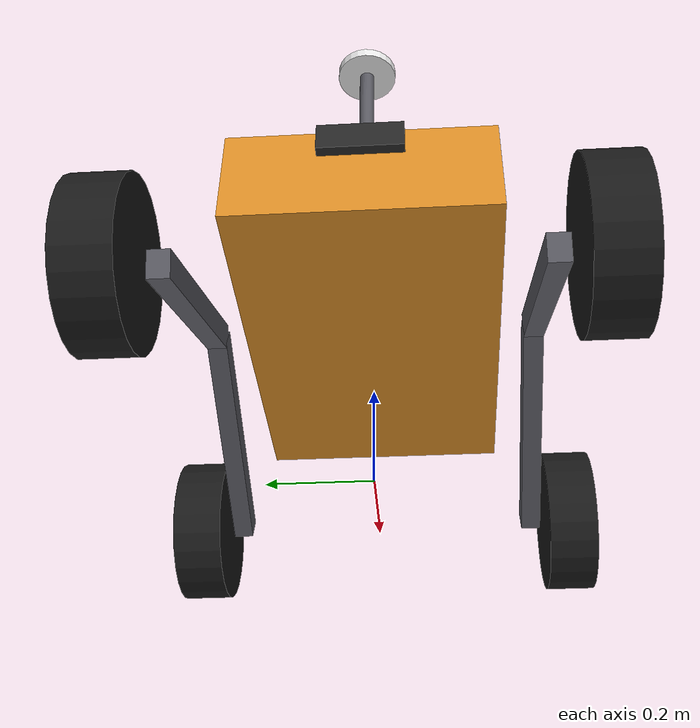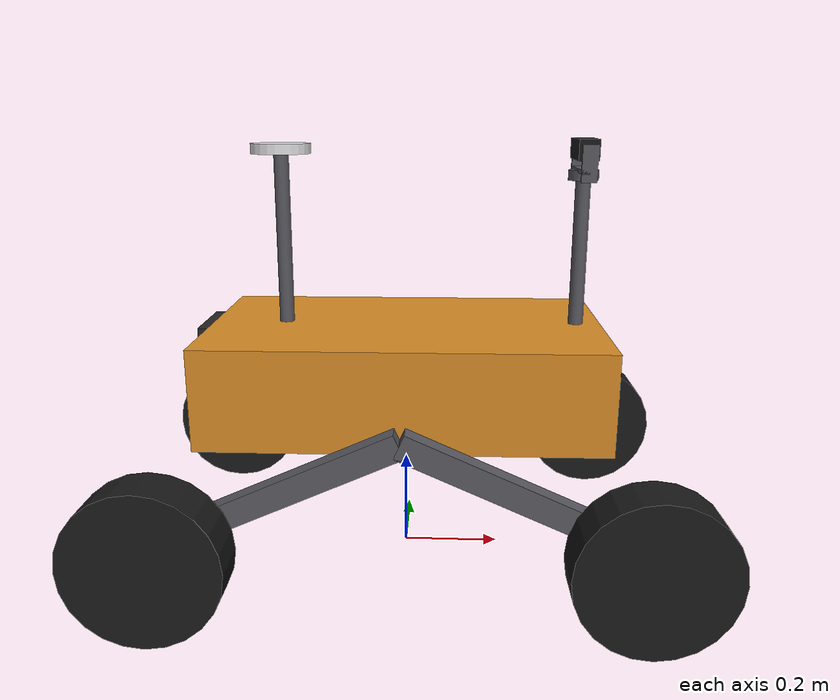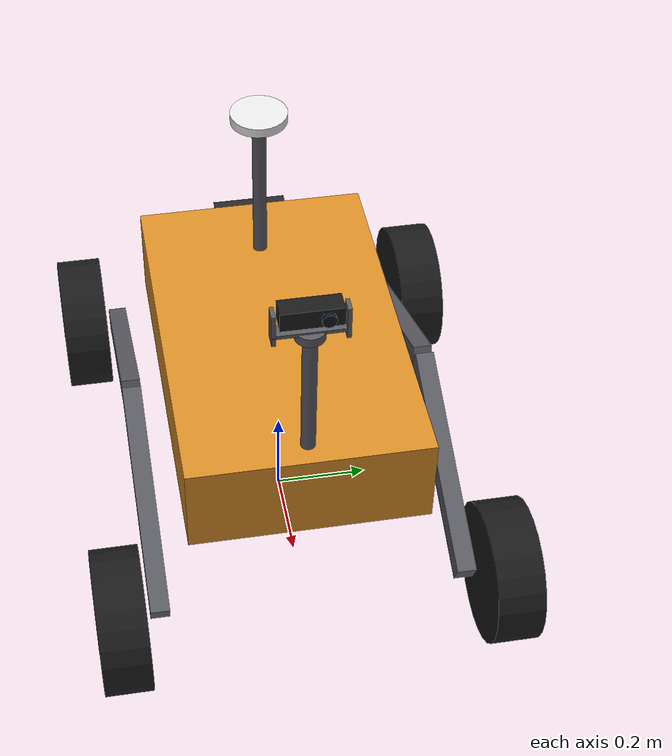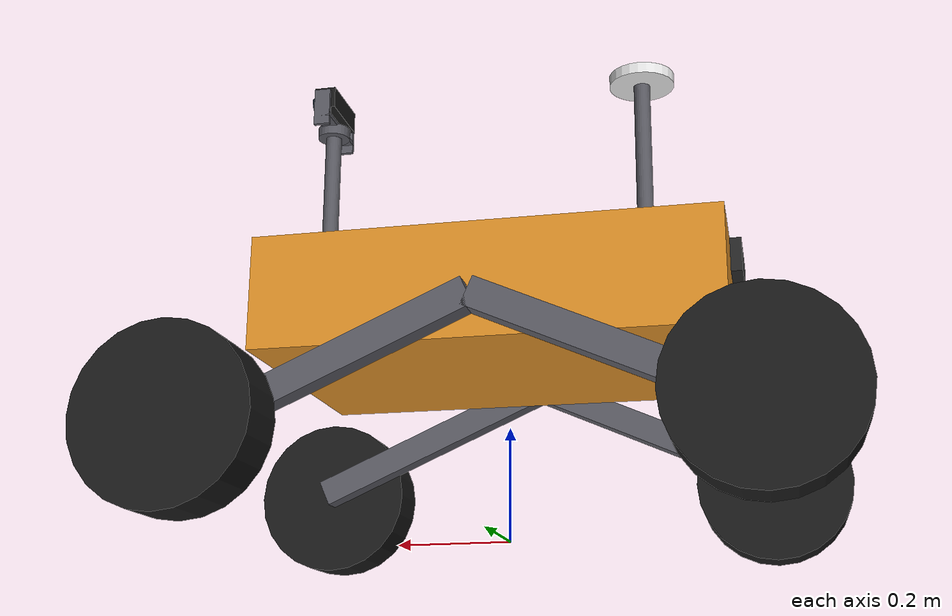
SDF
<?xml version="1.0"?>
<sdf version="1.11">
  <model name="rover">
    <link name="base_link">
      <inertial>
        <pose>0 0 0.4 0 0 0</pose>
        <mass>30</mass>
        <inertia>
          <ixx>0.725</ixx>
          <iyy>1.7</iyy>
          <izz>2.225</izz>
          <ixy>0</ixy>
          <ixz>0</ixz>
          <iyz>0</iyz>
        </inertia>
      </inertial>
      <collision name="chassis_collision">
        <pose>0 0 0.4 0 0 0</pose>
        <geometry>
          <box>
            <size>0.8 0.5 0.2</size>
          </box>
        </geometry>
      </collision>
      <visual name="chassis_visual">
        <pose>0 0 0.4 0 0 0</pose>
        <geometry>
          <box>
            <size>0.8 0.5 0.2</size>
          </box>
        </geometry>
        <material>
          <ambient>0.85 0.55 0.15 1</ambient>
          <diffuse>0.85 0.55 0.15 1</diffuse>
        </material>
      </visual>
      <sensor name="imu" type="imu">
        <pose>0 0 0.4 0 0 0</pose>
        <always_on>true</always_on>
        <update_rate>100</update_rate>
        <topic>/model/rover/imu</topic>
        <gz_frame_id>base_link</gz_frame_id>
        <imu>
          <angular_velocity>
            <x>
              <noise type="gaussian">
                <mean>0</mean>
                <stddev>0.002</stddev>
              </noise>
            </x>
            <y>
              <noise type="gaussian">
                <mean>0</mean>
                <stddev>0.002</stddev>
              </noise>
            </y>
            <z>
              <noise type="gaussian">
                <mean>0</mean>
                <stddev>0.002</stddev>
              </noise>
            </z>
          </angular_velocity>
          <linear_acceleration>
            <x>
              <noise type="gaussian">
                <mean>0</mean>
                <stddev>0.02</stddev>
              </noise>
            </x>
            <y>
              <noise type="gaussian">
                <mean>0</mean>
                <stddev>0.02</stddev>
              </noise>
            </y>
            <z>
              <noise type="gaussian">
                <mean>0</mean>
                <stddev>0.02</stddev>
              </noise>
            </z>
          </linear_acceleration>
        </imu>
      </sensor>
      <visual name="gnss_mast_visual">
        <pose>-0.25 0 0.675 0 0 0</pose>
        <geometry>
          <cylinder>
            <radius>0.015</radius>
            <length>0.35</length>
          </cylinder>
        </geometry>
        <material>
          <ambient>0.35 0.35 0.38 1</ambient>
          <diffuse>0.35 0.35 0.38 1</diffuse>
        </material>
      </visual>
      <visual name="gnss_antenna_visual">
        <pose>-0.25 0 0.85 0 0 0</pose>
        <geometry>
          <cylinder>
            <radius>0.06</radius>
            <length>0.02</length>
          </cylinder>
        </geometry>
        <material>
          <ambient>0.9 0.9 0.9 1</ambient>
          <diffuse>0.9 0.9 0.9 1</diffuse>
        </material>
      </visual>
      <visual name="camera_mast_visual">
        <pose>0.35 0 0.645 0 0 0</pose>
        <geometry>
          <cylinder>
            <radius>0.015</radius>
            <length>0.29</length>
          </cylinder>
        </geometry>
        <material>
          <ambient>0.35 0.35 0.38 1</ambient>
          <diffuse>0.35 0.35 0.38 1</diffuse>
        </material>
      </visual>
      <visual name="led_visual">
        <pose>-0.41 0 0.47 0 0 0</pose>
        <geometry>
          <box>
            <size>0.02 0.16 0.06</size>
          </box>
        </geometry>
        <material>
          <ambient>0.15 0.15 0.15 1</ambient>
          <diffuse>0.15 0.15 0.15 1</diffuse>
          <emissive>0 0 0 1</emissive>
        </material>
      </visual>
    </link>
    <link name="camera_pan_link">
      <pose>0.35 0 0.8 0 0 0</pose>
      <inertial>
        <pose>0 0 0 0 0 0</pose>
        <mass>0.02</mass>
        <inertia>
          <ixx>4.35e-05</ixx>
          <iyy>1.2e-05</iyy>
          <izz>4.35e-05</izz>
          <ixy>0</ixy>
          <ixz>0</ixz>
          <iyz>0</iyz>
        </inertia>
      </inertial>
      <visual name="turntable_visual">
        <pose>0 0 0 0 0 0</pose>
        <geometry>
          <cylinder>
            <radius>0.03</radius>
            <length>0.02</length>
          </cylinder>
        </geometry>
        <material>
          <ambient>0.35 0.35 0.38 1</ambient>
          <diffuse>0.35 0.35 0.38 1</diffuse>
        </material>
      </visual>
      <visual name="yoke_left_visual">
        <pose>0 0.07 0.025 0 0 0</pose>
        <geometry>
          <box>
            <size>0.03 0.008 0.07</size>
          </box>
        </geometry>
        <material>
          <ambient>0.35 0.35 0.38 1</ambient>
          <diffuse>0.35 0.35 0.38 1</diffuse>
        </material>
      </visual>
      <visual name="yoke_right_visual">
        <pose>0 -0.07 0.025 0 0 0</pose>
        <geometry>
          <box>
            <size>0.03 0.008 0.07</size>
          </box>
        </geometry>
        <material>
          <ambient>0.35 0.35 0.38 1</ambient>
          <diffuse>0.35 0.35 0.38 1</diffuse>
        </material>
      </visual>
      <visual name="yoke_base_visual">
        <pose>0 0 0.01 0 0 0</pose>
        <geometry>
          <box>
            <size>0.03 0.148 0.008</size>
          </box>
        </geometry>
        <material>
          <ambient>0.35 0.35 0.38 1</ambient>
          <diffuse>0.35 0.35 0.38 1</diffuse>
        </material>
      </visual>
    </link>
    <link name="camera_tilt_link">
      <pose>0.35 0 0.85 0 0 0</pose>
      <inertial>
        <pose>0 0 0 0 0 0</pose>
        <mass>0.02</mass>
        <inertia>
          <ixx>2.66666667e-05</ixx>
          <iyy>5.33333333e-06</iyy>
          <izz>2.66666667e-05</izz>
          <ixy>0</ixy>
          <ixz>0</ixz>
          <iyz>0</iyz>
        </inertia>
      </inertial>
      <visual name="camera_visual">
        <pose>0 0 0 0 0 0</pose>
        <geometry>
          <box>
            <size>0.04 0.12 0.04</size>
          </box>
        </geometry>
        <material>
          <ambient>0.1 0.1 0.1 1</ambient>
          <diffuse>0.1 0.1 0.1 1</diffuse>
        </material>
      </visual>
      <visual name="lens_visual">
        <pose>0.024 0.03 0 0 1.57079633 0</pose>
        <geometry>
          <cylinder>
            <radius>0.014</radius>
            <length>0.012</length>
          </cylinder>
        </geometry>
        <material>
          <ambient>0.05 0.08 0.12 1</ambient>
          <diffuse>0.05 0.08 0.12 1</diffuse>
        </material>
      </visual>
    </link>
    <joint name="camera_pan_joint" type="revolute">
      <parent>base_link</parent>
      <child>camera_pan_link</child>
      <axis>
        <xyz>0 0 1</xyz>
        <limit>
          <lower>-2.8</lower>
          <upper>2.8</upper>
          <effort>5</effort>
          <velocity>2</velocity>
        </limit>
        <dynamics>
          <damping>0.01</damping>
        </dynamics>
      </axis>
    </joint>
    <plugin filename="gz-sim-joint-position-controller-system" name="gz::sim::systems::JointPositionController">
      <joint_name>camera_pan_joint</joint_name>
      <topic>/model/rover/joint/camera_pan_joint/0/cmd_pos</topic>
      <use_velocity_commands>true</use_velocity_commands>
      <p_gain>10</p_gain>
      <cmd_max>2</cmd_max>
      <cmd_min>-2</cmd_min>
      <initial_position>0</initial_position>
    </plugin>
    <joint name="camera_tilt_joint" type="revolute">
      <parent>camera_pan_link</parent>
      <child>camera_tilt_link</child>
      <axis>
        <xyz>0 1 0</xyz>
        <limit>
          <lower>-0.6</lower>
          <upper>1.2</upper>
          <effort>5</effort>
          <velocity>2</velocity>
        </limit>
        <dynamics>
          <damping>0.01</damping>
        </dynamics>
      </axis>
    </joint>
    <plugin filename="gz-sim-joint-position-controller-system" name="gz::sim::systems::JointPositionController">
      <joint_name>camera_tilt_joint</joint_name>
      <topic>/model/rover/joint/camera_tilt_joint/0/cmd_pos</topic>
      <use_velocity_commands>true</use_velocity_commands>
      <p_gain>10</p_gain>
      <cmd_max>2</cmd_max>
      <cmd_min>-2</cmd_min>
      <initial_position>0.12</initial_position>
    </plugin>
    <link name="rocker_left">
      <pose>0 0.4 0.35 0 0 0</pose>
      <inertial>
        <pose>0 -0.08 -0.1 0 0 0</pose>
        <mass>3</mass>
        <inertia>
          <ixx>0.01</ixx>
          <iyy>0.2125</iyy>
          <izz>0.2025</izz>
          <ixy>0</ixy>
          <ixz>0</ixz>
          <iyz>0</iyz>
        </inertia>
      </inertial>
      <collision name="front_arm_collision">
        <pose>0.225 -0.08 -0.1 0 0.41822433 0</pose>
        <geometry>
          <box>
            <size>0.49244289 0.04 0.05</size>
          </box>
        </geometry>
      </collision>
      <visual name="front_arm_visual">
        <pose>0.225 -0.08 -0.1 0 0.41822433 0</pose>
        <geometry>
          <box>
            <size>0.49244289 0.04 0.05</size>
          </box>
        </geometry>
        <material>
          <ambient>0.35 0.35 0.38 1</ambient>
          <diffuse>0.35 0.35 0.38 1</diffuse>
        </material>
      </visual>
      <collision name="rear_arm_collision">
        <pose>-0.225 -0.08 -0.1 0 -0.41822433 0</pose>
        <geometry>
          <box>
            <size>0.49244289 0.04 0.05</size>
          </box>
        </geometry>
      </collision>
      <visual name="rear_arm_visual">
        <pose>-0.225 -0.08 -0.1 0 -0.41822433 0</pose>
        <geometry>
          <box>
            <size>0.49244289 0.04 0.05</size>
          </box>
        </geometry>
        <material>
          <ambient>0.35 0.35 0.38 1</ambient>
          <diffuse>0.35 0.35 0.38 1</diffuse>
        </material>
      </visual>
    </link>
    <joint name="rocker_left_joint" type="revolute">
      <parent>base_link</parent>
      <child>rocker_left</child>
      <axis>
        <xyz>0 1 0</xyz>
        <limit>
          <lower>-0.5</lower>
          <upper>0.5</upper>
        </limit>
        <dynamics>
          <damping>0.5</damping>
        </dynamics>
      </axis>
    </joint>
    <link name="hub_lat_fl">
      <pose>0.45 0.4 0.15 0 0 0</pose>
      <inertial>
        <mass>0.1</mass>
        <inertia>
          <ixx>1e-4</ixx>
          <iyy>1e-4</iyy>
          <izz>1e-4</izz>
        </inertia>
      </inertial>
    </link>
    <link name="hub_rad_fl">
      <pose>0.45 0.4 0.15 0 0 0</pose>
      <inertial>
        <mass>0.1</mass>
        <inertia>
          <ixx>1e-4</ixx>
          <iyy>1e-4</iyy>
          <izz>1e-4</izz>
        </inertia>
      </inertial>
    </link>
    <link name="wheel_fl">
      <pose>0.45 0.4 0.15 0 0 0</pose>
      <inertial>
        <pose>0 0 0 0 0 0</pose>
        <mass>2.5</mass>
        <inertia>
          <ixx>0.0161458333</ixx>
          <iyy>0.028125</iyy>
          <izz>0.0161458333</izz>
          <ixy>0</ixy>
          <ixz>0</ixz>
          <iyz>0</iyz>
        </inertia>
      </inertial>
      <collision name="tire_collision">
        <pose>0 0 0 1.57079633 0 0</pose>
        <geometry>
          <cylinder>
            <radius>0.15</radius>
            <length>0.1</length>
          </cylinder>
        </geometry>
        <surface>
          <friction>
            <ode>
              <mu>0.5</mu>
              <mu2>1</mu2>
              <fdir1>0 0 1</fdir1>
            </ode>
          </friction>
        </surface>
      </collision>
      <visual name="tire_visual">
        <pose>0 0 0 1.57079633 0 0</pose>
        <geometry>
          <cylinder>
            <radius>0.15</radius>
            <length>0.1</length>
          </cylinder>
        </geometry>
        <material>
          <ambient>0.1 0.1 0.1 1</ambient>
          <diffuse>0.1 0.1 0.1 1</diffuse>
        </material>
      </visual>
    </link>
    <joint name="tire_lat_fl" type="prismatic">
      <parent>rocker_left</parent>
      <child>hub_lat_fl</child>
      <axis>
        <xyz>0 1 0</xyz>
        <limit>
          <lower>-0.03</lower>
          <upper>0.03</upper>
        </limit>
        <dynamics>
          <damping>40.0</damping>
          <spring_reference>0</spring_reference>
          <spring_stiffness>40000.0</spring_stiffness>
        </dynamics>
      </axis>
    </joint>
    <joint name="tire_rad_fl" type="prismatic">
      <parent>hub_lat_fl</parent>
      <child>hub_rad_fl</child>
      <axis>
        <xyz>0 0 1</xyz>
        <limit>
          <lower>-0.03</lower>
          <upper>0.03</upper>
        </limit>
        <dynamics>
          <damping>170.0</damping>
          <spring_reference>0</spring_reference>
          <spring_stiffness>60000.0</spring_stiffness>
        </dynamics>
      </axis>
    </joint>
    <joint name="wheel_fl_joint" type="revolute">
      <parent>hub_rad_fl</parent>
      <child>wheel_fl</child>
      <axis>
        <xyz>0 1 0</xyz>
        <limit>
          <lower>-1e+16</lower>
          <upper>1e+16</upper>
          <effort>1000</effort>
          <velocity>10</velocity>
        </limit>
      </axis>
    </joint>
    <link name="hub_lat_rl">
      <pose>-0.45 0.4 0.15 0 0 0</pose>
      <inertial>
        <mass>0.1</mass>
        <inertia>
          <ixx>1e-4</ixx>
          <iyy>1e-4</iyy>
          <izz>1e-4</izz>
        </inertia>
      </inertial>
    </link>
    <link name="hub_rad_rl">
      <pose>-0.45 0.4 0.15 0 0 0</pose>
      <inertial>
        <mass>0.1</mass>
        <inertia>
          <ixx>1e-4</ixx>
          <iyy>1e-4</iyy>
          <izz>1e-4</izz>
        </inertia>
      </inertial>
    </link>
    <link name="wheel_rl">
      <pose>-0.45 0.4 0.15 0 0 0</pose>
      <inertial>
        <pose>0 0 0 0 0 0</pose>
        <mass>2.5</mass>
        <inertia>
          <ixx>0.0161458333</ixx>
          <iyy>0.028125</iyy>
          <izz>0.0161458333</izz>
          <ixy>0</ixy>
          <ixz>0</ixz>
          <iyz>0</iyz>
        </inertia>
      </inertial>
      <collision name="tire_collision">
        <pose>0 0 0 1.57079633 0 0</pose>
        <geometry>
          <cylinder>
            <radius>0.15</radius>
            <length>0.1</length>
          </cylinder>
        </geometry>
        <surface>
          <friction>
            <ode>
              <mu>0.5</mu>
              <mu2>1</mu2>
              <fdir1>0 0 1</fdir1>
            </ode>
          </friction>
        </surface>
      </collision>
      <visual name="tire_visual">
        <pose>0 0 0 1.57079633 0 0</pose>
        <geometry>
          <cylinder>
            <radius>0.15</radius>
            <length>0.1</length>
          </cylinder>
        </geometry>
        <material>
          <ambient>0.1 0.1 0.1 1</ambient>
          <diffuse>0.1 0.1 0.1 1</diffuse>
        </material>
      </visual>
    </link>
    <joint name="tire_lat_rl" type="prismatic">
      <parent>rocker_left</parent>
      <child>hub_lat_rl</child>
      <axis>
        <xyz>0 1 0</xyz>
        <limit>
          <lower>-0.03</lower>
          <upper>0.03</upper>
        </limit>
        <dynamics>
          <damping>40.0</damping>
          <spring_reference>0</spring_reference>
          <spring_stiffness>40000.0</spring_stiffness>
        </dynamics>
      </axis>
    </joint>
    <joint name="tire_rad_rl" type="prismatic">
      <parent>hub_lat_rl</parent>
      <child>hub_rad_rl</child>
      <axis>
        <xyz>0 0 1</xyz>
        <limit>
          <lower>-0.03</lower>
          <upper>0.03</upper>
        </limit>
        <dynamics>
          <damping>170.0</damping>
          <spring_reference>0</spring_reference>
          <spring_stiffness>60000.0</spring_stiffness>
        </dynamics>
      </axis>
    </joint>
    <joint name="wheel_rl_joint" type="revolute">
      <parent>hub_rad_rl</parent>
      <child>wheel_rl</child>
      <axis>
        <xyz>0 1 0</xyz>
        <limit>
          <lower>-1e+16</lower>
          <upper>1e+16</upper>
          <effort>1000</effort>
          <velocity>10</velocity>
        </limit>
      </axis>
    </joint>
    <link name="rocker_right">
      <pose>0 -0.4 0.35 0 0 0</pose>
      <inertial>
        <pose>0 0.08 -0.1 0 0 0</pose>
        <mass>3</mass>
        <inertia>
          <ixx>0.01</ixx>
          <iyy>0.2125</iyy>
          <izz>0.2025</izz>
          <ixy>0</ixy>
          <ixz>0</ixz>
          <iyz>0</iyz>
        </inertia>
      </inertial>
      <collision name="front_arm_collision">
        <pose>0.225 0.08 -0.1 0 0.41822433 0</pose>
        <geometry>
          <box>
            <size>0.49244289 0.04 0.05</size>
          </box>
        </geometry>
      </collision>
      <visual name="front_arm_visual">
        <pose>0.225 0.08 -0.1 0 0.41822433 0</pose>
        <geometry>
          <box>
            <size>0.49244289 0.04 0.05</size>
          </box>
        </geometry>
        <material>
          <ambient>0.35 0.35 0.38 1</ambient>
          <diffuse>0.35 0.35 0.38 1</diffuse>
        </material>
      </visual>
      <collision name="rear_arm_collision">
        <pose>-0.225 0.08 -0.1 0 -0.41822433 0</pose>
        <geometry>
          <box>
            <size>0.49244289 0.04 0.05</size>
          </box>
        </geometry>
      </collision>
      <visual name="rear_arm_visual">
        <pose>-0.225 0.08 -0.1 0 -0.41822433 0</pose>
        <geometry>
          <box>
            <size>0.49244289 0.04 0.05</size>
          </box>
        </geometry>
        <material>
          <ambient>0.35 0.35 0.38 1</ambient>
          <diffuse>0.35 0.35 0.38 1</diffuse>
        </material>
      </visual>
    </link>
    <joint name="rocker_right_joint" type="revolute">
      <parent>base_link</parent>
      <child>rocker_right</child>
      <axis>
        <xyz>0 1 0</xyz>
        <limit>
          <lower>-0.5</lower>
          <upper>0.5</upper>
        </limit>
        <dynamics>
          <damping>0.5</damping>
        </dynamics>
      </axis>
    </joint>
    <link name="hub_lat_fr">
      <pose>0.45 -0.4 0.15 0 0 0</pose>
      <inertial>
        <mass>0.1</mass>
        <inertia>
          <ixx>1e-4</ixx>
          <iyy>1e-4</iyy>
          <izz>1e-4</izz>
        </inertia>
      </inertial>
    </link>
    <link name="hub_rad_fr">
      <pose>0.45 -0.4 0.15 0 0 0</pose>
      <inertial>
        <mass>0.1</mass>
        <inertia>
          <ixx>1e-4</ixx>
          <iyy>1e-4</iyy>
          <izz>1e-4</izz>
        </inertia>
      </inertial>
    </link>
    <link name="wheel_fr">
      <pose>0.45 -0.4 0.15 0 0 0</pose>
      <inertial>
        <pose>0 0 0 0 0 0</pose>
        <mass>2.5</mass>
        <inertia>
          <ixx>0.0161458333</ixx>
          <iyy>0.028125</iyy>
          <izz>0.0161458333</izz>
          <ixy>0</ixy>
          <ixz>0</ixz>
          <iyz>0</iyz>
        </inertia>
      </inertial>
      <collision name="tire_collision">
        <pose>0 0 0 1.57079633 0 0</pose>
        <geometry>
          <cylinder>
            <radius>0.15</radius>
            <length>0.1</length>
          </cylinder>
        </geometry>
        <surface>
          <friction>
            <ode>
              <mu>0.5</mu>
              <mu2>1</mu2>
              <fdir1>0 0 1</fdir1>
            </ode>
          </friction>
        </surface>
      </collision>
      <visual name="tire_visual">
        <pose>0 0 0 1.57079633 0 0</pose>
        <geometry>
          <cylinder>
            <radius>0.15</radius>
            <length>0.1</length>
          </cylinder>
        </geometry>
        <material>
          <ambient>0.1 0.1 0.1 1</ambient>
          <diffuse>0.1 0.1 0.1 1</diffuse>
        </material>
      </visual>
    </link>
    <joint name="tire_lat_fr" type="prismatic">
      <parent>rocker_right</parent>
      <child>hub_lat_fr</child>
      <axis>
        <xyz>0 1 0</xyz>
        <limit>
          <lower>-0.03</lower>
          <upper>0.03</upper>
        </limit>
        <dynamics>
          <damping>40.0</damping>
          <spring_reference>0</spring_reference>
          <spring_stiffness>40000.0</spring_stiffness>
        </dynamics>
      </axis>
    </joint>
    <joint name="tire_rad_fr" type="prismatic">
      <parent>hub_lat_fr</parent>
      <child>hub_rad_fr</child>
      <axis>
        <xyz>0 0 1</xyz>
        <limit>
          <lower>-0.03</lower>
          <upper>0.03</upper>
        </limit>
        <dynamics>
          <damping>170.0</damping>
          <spring_reference>0</spring_reference>
          <spring_stiffness>60000.0</spring_stiffness>
        </dynamics>
      </axis>
    </joint>
    <joint name="wheel_fr_joint" type="revolute">
      <parent>hub_rad_fr</parent>
      <child>wheel_fr</child>
      <axis>
        <xyz>0 1 0</xyz>
        <limit>
          <lower>-1e+16</lower>
          <upper>1e+16</upper>
          <effort>1000</effort>
          <velocity>10</velocity>
        </limit>
      </axis>
    </joint>
    <link name="hub_lat_rr">
      <pose>-0.45 -0.4 0.15 0 0 0</pose>
      <inertial>
        <mass>0.1</mass>
        <inertia>
          <ixx>1e-4</ixx>
          <iyy>1e-4</iyy>
          <izz>1e-4</izz>
        </inertia>
      </inertial>
    </link>
    <link name="hub_rad_rr">
      <pose>-0.45 -0.4 0.15 0 0 0</pose>
      <inertial>
        <mass>0.1</mass>
        <inertia>
          <ixx>1e-4</ixx>
          <iyy>1e-4</iyy>
          <izz>1e-4</izz>
        </inertia>
      </inertial>
    </link>
    <link name="wheel_rr">
      <pose>-0.45 -0.4 0.15 0 0 0</pose>
      <inertial>
        <pose>0 0 0 0 0 0</pose>
        <mass>2.5</mass>
        <inertia>
          <ixx>0.0161458333</ixx>
          <iyy>0.028125</iyy>
          <izz>0.0161458333</izz>
          <ixy>0</ixy>
          <ixz>0</ixz>
          <iyz>0</iyz>
        </inertia>
      </inertial>
      <collision name="tire_collision">
        <pose>0 0 0 1.57079633 0 0</pose>
        <geometry>
          <cylinder>
            <radius>0.15</radius>
            <length>0.1</length>
          </cylinder>
        </geometry>
        <surface>
          <friction>
            <ode>
              <mu>0.5</mu>
              <mu2>1</mu2>
              <fdir1>0 0 1</fdir1>
            </ode>
          </friction>
        </surface>
      </collision>
      <visual name="tire_visual">
        <pose>0 0 0 1.57079633 0 0</pose>
        <geometry>
          <cylinder>
            <radius>0.15</radius>
            <length>0.1</length>
          </cylinder>
        </geometry>
        <material>
          <ambient>0.1 0.1 0.1 1</ambient>
          <diffuse>0.1 0.1 0.1 1</diffuse>
        </material>
      </visual>
    </link>
    <joint name="tire_lat_rr" type="prismatic">
      <parent>rocker_right</parent>
      <child>hub_lat_rr</child>
      <axis>
        <xyz>0 1 0</xyz>
        <limit>
          <lower>-0.03</lower>
          <upper>0.03</upper>
        </limit>
        <dynamics>
          <damping>40.0</damping>
          <spring_reference>0</spring_reference>
          <spring_stiffness>40000.0</spring_stiffness>
        </dynamics>
      </axis>
    </joint>
    <joint name="tire_rad_rr" type="prismatic">
      <parent>hub_lat_rr</parent>
      <child>hub_rad_rr</child>
      <axis>
        <xyz>0 0 1</xyz>
        <limit>
          <lower>-0.03</lower>
          <upper>0.03</upper>
        </limit>
        <dynamics>
          <damping>170.0</damping>
          <spring_reference>0</spring_reference>
          <spring_stiffness>60000.0</spring_stiffness>
        </dynamics>
      </axis>
    </joint>
    <joint name="wheel_rr_joint" type="revolute">
      <parent>hub_rad_rr</parent>
      <child>wheel_rr</child>
      <axis>
        <xyz>0 1 0</xyz>
        <limit>
          <lower>-1e+16</lower>
          <upper>1e+16</upper>
          <effort>1000</effort>
          <velocity>10</velocity>
        </limit>
      </axis>
    </joint>
    <plugin filename="RockerDifferential" name="rover_sim::RockerDifferential">
      <left_joint>rocker_left_joint</left_joint>
      <right_joint>rocker_right_joint</right_joint>
      <stiffness>5000</stiffness>
      <damping>100</damping>
    </plugin>
    <plugin filename="gz-sim-joint-state-publisher-system" name="gz::sim::systems::JointStatePublisher">
      <topic>/model/rover/joint_states</topic>
    </plugin>
    <plugin filename="gz-sim-odometry-publisher-system" name="gz::sim::systems::OdometryPublisher">
      <odom_topic>/model/rover/ground_truth</odom_topic>
      <odom_frame>world</odom_frame>
      <robot_base_frame>base_link</robot_base_frame>
      <dimensions>3</dimensions>
      <odom_publish_frequency>50</odom_publish_frequency>
    </plugin>
    <plugin filename="RoverDrive" name="rover_sim::RoverDrive">
      <drive>motor</drive>
      <log>/private/tmp/claude-502/-Users-alarion239-Desktop-Rover/d048031d-a613-49e0-ad24-8cb3b1a40ce3/scratchpad/drive.TDh3/logs/fin_slab_full_0.15.bin</log>
      <contact>true</contact>
      <friction_circle>true</friction_circle>
      <perp_ratio>0.0</perp_ratio>
      <mu_s>1.0</mu_s>
      <mu_k>0.8</mu_k>
      <v_stribeck>0.03</v_stribeck>
      <mu_noise>0.2</mu_noise>
      <mu_noise_scale>0.3</mu_noise_scale>
    </plugin>
  </model>
</sdf>
